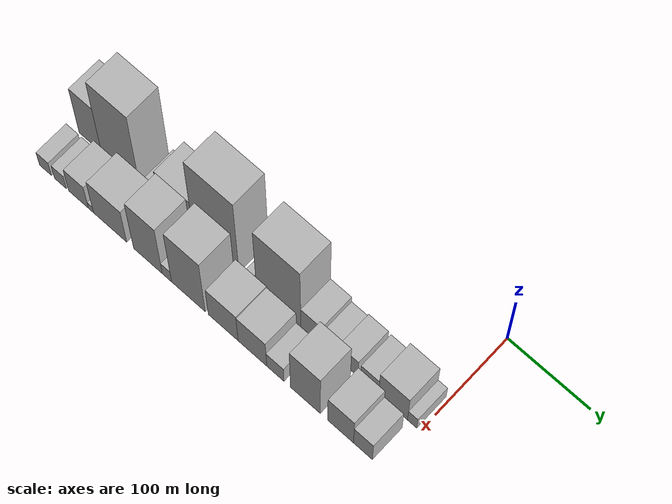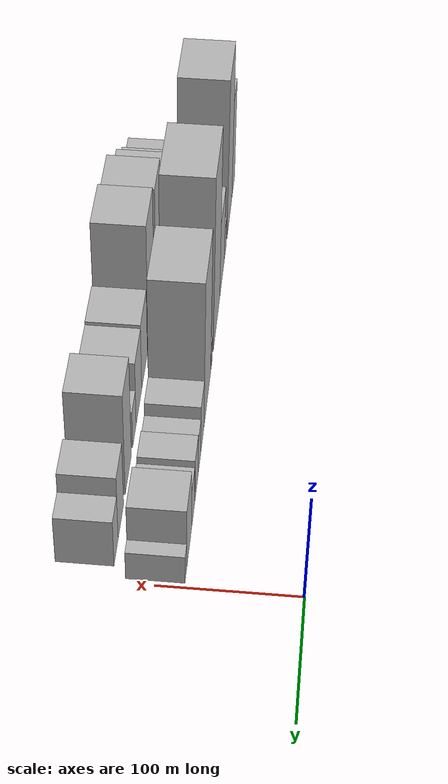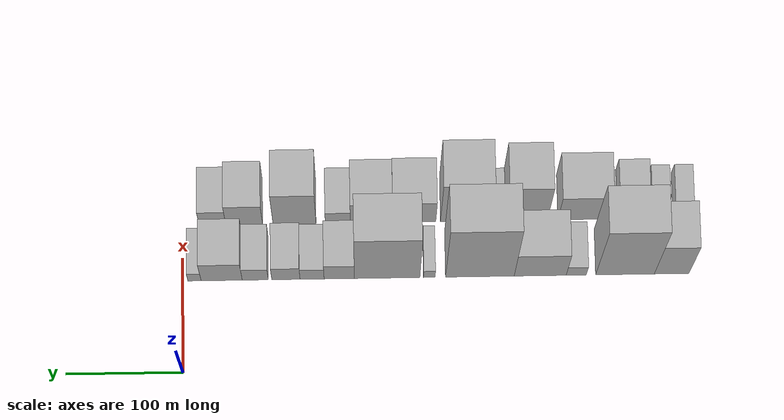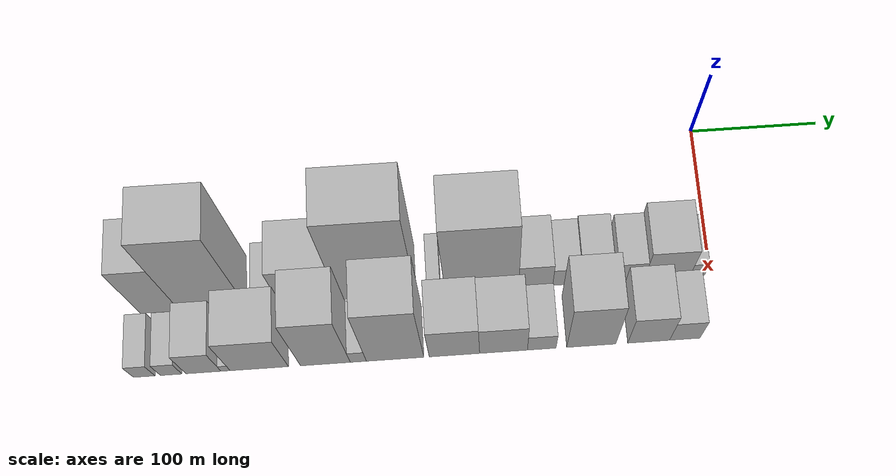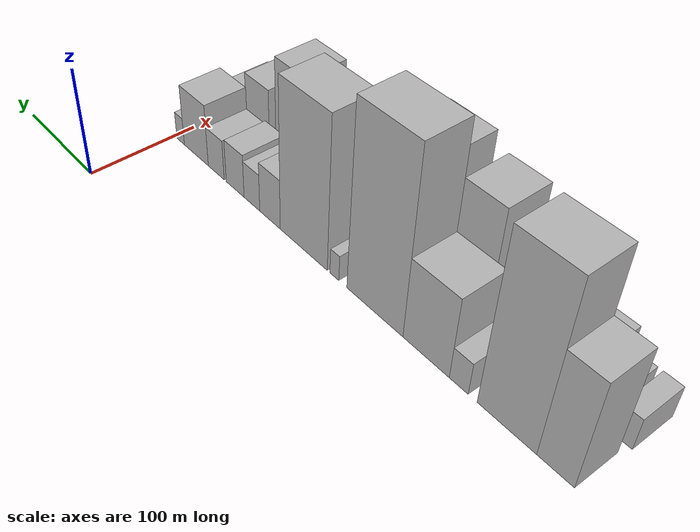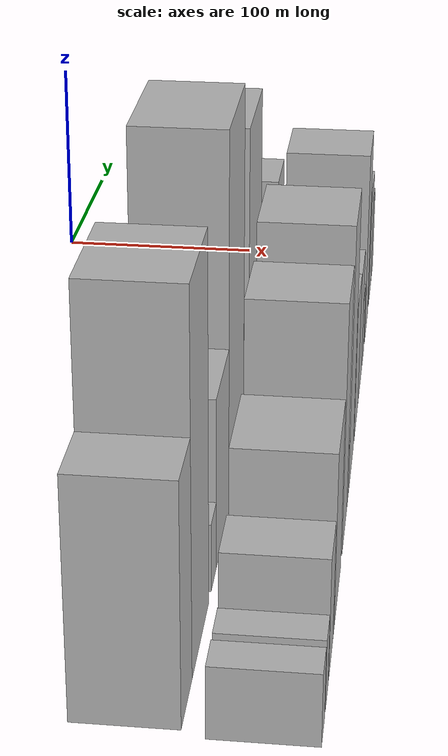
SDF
<sdf version="1.6">
 <world name="default">
  <model name="building_1">
   <static>1</static>
   <pose>100.0000 -419.1449 0 0.000000 0.000000 0.000000</pose>
   <link name="link">
    <pose>0 0 49.50 0 0 0</pose>
    <collision name="collision"><geometry><box><size>40.0000 29.7102 99.0000</size></box></geometry></collision>
    <visual name="visual">
     <cast_shadows>0</cast_shadows>
     <geometry><box><size>40.0000 29.7102 99.0000</size></box></geometry>
     <material>
      <script>
       <uri>model://HANNAS_wall/materials/scripts</uri>
       <uri>model://HANNAS_wall/materials/textures</uri>
       <name>vrc/HANNAS_wall</name>
      </script>
     </material>
    </visual>
   </link>
  </model>
  <model name="building_2">
   <static>1</static>
   <pose>100.0000 -379.1025 0 0.000000 0.000000 0.000000</pose>
   <link name="link">
    <pose>0 0 78.00 0 0 0</pose>
    <collision name="collision"><geometry><box><size>40.0000 50.3746 156.0000</size></box></geometry></collision>
    <visual name="visual">
     <cast_shadows>0</cast_shadows>
     <geometry><box><size>40.0000 50.3746 156.0000</size></box></geometry>
     <material>
      <script>
       <uri>model://HANNAS_wall/materials/scripts</uri>
       <uri>model://HANNAS_wall/materials/textures</uri>
       <name>vrc/HANNAS_wall</name>
      </script>
     </material>
    </visual>
   </link>
  </model>
  <model name="building_3">
   <static>1</static>
   <pose>100.0000 -337.2954 0 0.000000 0.000000 0.000000</pose>
   <link name="link">
    <pose>0 0 15.00 0 0 0</pose>
    <collision name="collision"><geometry><box><size>40.0000 17.2396 30.0000</size></box></geometry></collision>
    <visual name="visual">
     <cast_shadows>0</cast_shadows>
     <geometry><box><size>40.0000 17.2396 30.0000</size></box></geometry>
     <material>
      <script>
       <uri>model://HANNAS_wall/materials/scripts</uri>
       <uri>model://HANNAS_wall/materials/textures</uri>
       <name>vrc/HANNAS_wall</name>
      </script>
     </material>
    </visual>
   </link>
  </model>
  <model name="building_4">
   <static>1</static>
   <pose>100.0000 -306.3645 0 0.000000 0.000000 0.000000</pose>
   <link name="link">
    <pose>0 0 37.50 0 0 0</pose>
    <collision name="collision"><geometry><box><size>40.0000 44.6222 75.0000</size></box></geometry></collision>
    <visual name="visual">
     <cast_shadows>0</cast_shadows>
     <geometry><box><size>40.0000 44.6222 75.0000</size></box></geometry>
     <material>
      <script>
       <uri>model://HANNAS_wall/materials/scripts</uri>
       <uri>model://HANNAS_wall/materials/textures</uri>
       <name>vrc/HANNAS_wall</name>
      </script>
     </material>
    </visual>
   </link>
  </model>
  <model name="building_5">
   <static>1</static>
   <pose>100.0000 -254.5861 0 0.000000 0.000000 0.000000</pose>
   <link name="link">
    <pose>0 0 84.00 0 0 0</pose>
    <collision name="collision"><geometry><box><size>40.0000 58.9345 168.0000</size></box></geometry></collision>
    <visual name="visual">
     <cast_shadows>0</cast_shadows>
     <geometry><box><size>40.0000 58.9345 168.0000</size></box></geometry>
     <material>
      <script>
       <uri>model://HANNAS_wall/materials/scripts</uri>
       <uri>model://HANNAS_wall/materials/textures</uri>
       <name>vrc/HANNAS_wall</name>
      </script>
     </material>
    </visual>
   </link>
  </model>
  <model name="building_6">
   <static>1</static>
   <pose>100.0000 -211.1218 0 0.000000 0.000000 0.000000</pose>
   <link name="link">
    <pose>0 0 12.00 0 0 0</pose>
    <collision name="collision"><geometry><box><size>40.0000 9.9941 24.0000</size></box></geometry></collision>
    <visual name="visual">
     <cast_shadows>0</cast_shadows>
     <geometry><box><size>40.0000 9.9941 24.0000</size></box></geometry>
     <material>
      <script>
       <uri>model://HANNAS_wall/materials/scripts</uri>
       <uri>model://HANNAS_wall/materials/textures</uri>
       <name>vrc/HANNAS_wall</name>
      </script>
     </material>
    </visual>
   </link>
  </model>
  <model name="building_7">
   <static>1</static>
   <pose>100.0000 -175.0322 0 0.000000 0.000000 0.000000</pose>
   <link name="link">
    <pose>0 0 70.50 0 0 0</pose>
    <collision name="collision"><geometry><box><size>40.0000 56.1850 141.0000</size></box></geometry></collision>
    <visual name="visual">
     <cast_shadows>0</cast_shadows>
     <geometry><box><size>40.0000 56.1850 141.0000</size></box></geometry>
     <material>
      <script>
       <uri>model://HANNAS_wall/materials/scripts</uri>
       <uri>model://HANNAS_wall/materials/textures</uri>
       <name>vrc/HANNAS_wall</name>
      </script>
     </material>
    </visual>
   </link>
  </model>
  <model name="building_8">
   <static>1</static>
   <pose>100.0000 -133.9525 0 0.000000 0.000000 0.000000</pose>
   <link name="link">
    <pose>0 0 24.00 0 0 0</pose>
    <collision name="collision"><geometry><box><size>40.0000 25.9746 48.0000</size></box></geometry></collision>
    <visual name="visual">
     <cast_shadows>0</cast_shadows>
     <geometry><box><size>40.0000 25.9746 48.0000</size></box></geometry>
     <material>
      <script>
       <uri>model://HANNAS_wall/materials/scripts</uri>
       <uri>model://HANNAS_wall/materials/textures</uri>
       <name>vrc/HANNAS_wall</name>
      </script>
     </material>
    </visual>
   </link>
  </model>
  <model name="building_9">
   <static>1</static>
   <pose>100.0000 -110.6520 0 0.000000 0.000000 0.000000</pose>
   <link name="link">
    <pose>0 0 18.00 0 0 0</pose>
    <collision name="collision"><geometry><box><size>40.0000 20.6263 36.0000</size></box></geometry></collision>
    <visual name="visual">
     <cast_shadows>0</cast_shadows>
     <geometry><box><size>40.0000 20.6263 36.0000</size></box></geometry>
     <material>
      <script>
       <uri>model://HANNAS_wall/materials/scripts</uri>
       <uri>model://HANNAS_wall/materials/textures</uri>
       <name>vrc/HANNAS_wall</name>
      </script>
     </material>
    </visual>
   </link>
  </model>
  <model name="building_10">
   <static>1</static>
   <pose>100.0000 -88.2212 0 0.000000 0.000000 0.000000</pose>
   <link name="link">
    <pose>0 0 21.00 0 0 0</pose>
    <collision name="collision"><geometry><box><size>40.0000 24.2351 42.0000</size></box></geometry></collision>
    <visual name="visual">
     <cast_shadows>0</cast_shadows>
     <geometry><box><size>40.0000 24.2351 42.0000</size></box></geometry>
     <material>
      <script>
       <uri>model://HANNAS_wall/materials/scripts</uri>
       <uri>model://HANNAS_wall/materials/textures</uri>
       <name>vrc/HANNAS_wall</name>
      </script>
     </material>
    </visual>
   </link>
  </model>
  <model name="building_11">
   <static>1</static>
   <pose>100.0000 -61.9417 0 0.000000 0.000000 0.000000</pose>
   <link name="link">
    <pose>0 0 19.50 0 0 0</pose>
    <collision name="collision"><geometry><box><size>40.0000 22.3239 39.0000</size></box></geometry></collision>
    <visual name="visual">
     <cast_shadows>0</cast_shadows>
     <geometry><box><size>40.0000 22.3239 39.0000</size></box></geometry>
     <material>
      <script>
       <uri>model://HANNAS_wall/materials/scripts</uri>
       <uri>model://HANNAS_wall/materials/textures</uri>
       <name>vrc/HANNAS_wall</name>
      </script>
     </material>
    </visual>
   </link>
  </model>
  <model name="building_12">
   <static>1</static>
   <pose>100.0000 -33.1645 0 0.000000 0.000000 0.000000</pose>
   <link name="link">
    <pose>0 0 30.00 0 0 0</pose>
    <collision name="collision"><geometry><box><size>40.0000 35.2304 60.0000</size></box></geometry></collision>
    <visual name="visual">
     <cast_shadows>0</cast_shadows>
     <geometry><box><size>40.0000 35.2304 60.0000</size></box></geometry>
     <material>
      <script>
       <uri>model://HANNAS_wall/materials/scripts</uri>
       <uri>model://HANNAS_wall/materials/textures</uri>
       <name>vrc/HANNAS_wall</name>
      </script>
     </material>
    </visual>
   </link>
  </model>
  <model name="building_13">
   <static>1</static>
   <pose>100.0000 -9.8632 0 0.000000 0.000000 0.000000</pose>
   <link name="link">
    <pose>0 0 13.50 0 0 0</pose>
    <collision name="collision"><geometry><box><size>40.0000 11.3722 27.0000</size></box></geometry></collision>
    <visual name="visual">
     <cast_shadows>0</cast_shadows>
     <geometry><box><size>40.0000 11.3722 27.0000</size></box></geometry>
     <material>
      <script>
       <uri>model://HANNAS_wall/materials/scripts</uri>
       <uri>model://HANNAS_wall/materials/textures</uri>
       <name>vrc/HANNAS_wall</name>
      </script>
     </material>
    </visual>
   </link>
  </model>
  <model name="building_27">
   <static>1</static>
   <pose>149.0000 -430.0096 0 0.000000 0.000000 0.000000</pose>
   <link name="link">
    <pose>0 0 15.00 0 0 0</pose>
    <collision name="collision"><geometry><box><size>40.0000 15.9809 30.0000</size></box></geometry></collision>
    <visual name="visual">
     <cast_shadows>0</cast_shadows>
     <geometry><box><size>40.0000 15.9809 30.0000</size></box></geometry>
     <material>
      <script>
       <uri>model://HANNAS_wall/materials/scripts</uri>
       <uri>model://HANNAS_wall/materials/textures</uri>
       <name>vrc/HANNAS_wall</name>
      </script>
     </material>
    </visual>
   </link>
  </model>
  <model name="building_28">
   <static>1</static>
   <pose>149.0000 -410.0666 0 0.000000 0.000000 0.000000</pose>
   <link name="link">
    <pose>0 0 15.00 0 0 0</pose>
    <collision name="collision"><geometry><box><size>40.0000 15.9052 30.0000</size></box></geometry></collision>
    <visual name="visual">
     <cast_shadows>0</cast_shadows>
     <geometry><box><size>40.0000 15.9052 30.0000</size></box></geometry>
     <material>
      <script>
       <uri>model://HANNAS_wall/materials/scripts</uri>
       <uri>model://HANNAS_wall/materials/textures</uri>
       <name>vrc/HANNAS_wall</name>
      </script>
     </material>
    </visual>
   </link>
  </model>
  <model name="building_29">
   <static>1</static>
   <pose>149.0000 -386.0494 0 0.000000 0.000000 0.000000</pose>
   <link name="link">
    <pose>0 0 25.50 0 0 0</pose>
    <collision name="collision"><geometry><box><size>40.0000 26.1292 51.0000</size></box></geometry></collision>
    <visual name="visual">
     <cast_shadows>0</cast_shadows>
     <geometry><box><size>40.0000 26.1292 51.0000</size></box></geometry>
     <material>
      <script>
       <uri>model://HANNAS_wall/materials/scripts</uri>
       <uri>model://HANNAS_wall/materials/textures</uri>
       <name>vrc/HANNAS_wall</name>
      </script>
     </material>
    </visual>
   </link>
  </model>
  <model name="building_30">
   <static>1</static>
   <pose>149.0000 -369.6076 0 0.000000 0.000000 0.000000</pose>
   <link name="link">
    <pose>0 0 7.50 0 0 0</pose>
    <collision name="collision"><geometry><box><size>40.0000 6.7543 15.0000</size></box></geometry></collision>
    <visual name="visual">
     <cast_shadows>0</cast_shadows>
     <geometry><box><size>40.0000 6.7543 15.0000</size></box></geometry>
     <material>
      <script>
       <uri>model://HANNAS_wall/materials/scripts</uri>
       <uri>model://HANNAS_wall/materials/textures</uri>
       <name>vrc/HANNAS_wall</name>
      </script>
     </material>
    </visual>
   </link>
  </model>
  <model name="building_31">
   <static>1</static>
   <pose>149.0000 -344.5465 0 0.000000 0.000000 0.000000</pose>
   <link name="link">
    <pose>0 0 37.50 0 0 0</pose>
    <collision name="collision"><geometry><box><size>40.0000 43.3679 75.0000</size></box></geometry></collision>
    <visual name="visual">
     <cast_shadows>0</cast_shadows>
     <geometry><box><size>40.0000 43.3679 75.0000</size></box></geometry>
     <material>
      <script>
       <uri>model://HANNAS_wall/materials/scripts</uri>
       <uri>model://HANNAS_wall/materials/textures</uri>
       <name>vrc/HANNAS_wall</name>
      </script>
     </material>
    </visual>
   </link>
  </model>
  <model name="building_32">
   <static>1</static>
   <pose>149.0000 -295.2704 0 0.000000 0.000000 0.000000</pose>
   <link name="link">
    <pose>0 0 55.50 0 0 0</pose>
    <collision name="collision"><geometry><box><size>40.0000 37.1843 111.0000</size></box></geometry></collision>
    <visual name="visual">
     <cast_shadows>0</cast_shadows>
     <geometry><box><size>40.0000 37.1843 111.0000</size></box></geometry>
     <material>
      <script>
       <uri>model://HANNAS_wall/materials/scripts</uri>
       <uri>model://HANNAS_wall/materials/textures</uri>
       <name>vrc/HANNAS_wall</name>
      </script>
     </material>
    </visual>
   </link>
  </model>
  <model name="building_33">
   <static>1</static>
   <pose>149.0000 -270.7021 0 0.000000 0.000000 0.000000</pose>
   <link name="link">
    <pose>0 0 13.50 0 0 0</pose>
    <collision name="collision"><geometry><box><size>40.0000 11.9523 27.0000</size></box></geometry></collision>
    <visual name="visual">
     <cast_shadows>0</cast_shadows>
     <geometry><box><size>40.0000 11.9523 27.0000</size></box></geometry>
     <material>
      <script>
       <uri>model://HANNAS_wall/materials/scripts</uri>
       <uri>model://HANNAS_wall/materials/textures</uri>
       <name>vrc/HANNAS_wall</name>
      </script>
     </material>
    </visual>
   </link>
  </model>
  <model name="building_34">
   <static>1</static>
   <pose>149.0000 -243.2420 0 0.000000 0.000000 0.000000</pose>
   <link name="link">
    <pose>0 0 61.50 0 0 0</pose>
    <collision name="collision"><geometry><box><size>40.0000 42.9679 123.0000</size></box></geometry></collision>
    <visual name="visual">
     <cast_shadows>0</cast_shadows>
     <geometry><box><size>40.0000 42.9679 123.0000</size></box></geometry>
     <material>
      <script>
       <uri>model://HANNAS_wall/materials/scripts</uri>
       <uri>model://HANNAS_wall/materials/textures</uri>
       <name>vrc/HANNAS_wall</name>
      </script>
     </material>
    </visual>
   </link>
  </model>
  <model name="building_35">
   <static>1</static>
   <pose>149.0000 -198.8711 0 0.000000 0.000000 0.000000</pose>
   <link name="link">
    <pose>0 0 33.00 0 0 0</pose>
    <collision name="collision"><geometry><box><size>40.0000 37.7739 66.0000</size></box></geometry></collision>
    <visual name="visual">
     <cast_shadows>0</cast_shadows>
     <geometry><box><size>40.0000 37.7739 66.0000</size></box></geometry>
     <material>
      <script>
       <uri>model://HANNAS_wall/materials/scripts</uri>
       <uri>model://HANNAS_wall/materials/textures</uri>
       <name>vrc/HANNAS_wall</name>
      </script>
     </material>
    </visual>
   </link>
  </model>
  <model name="building_36">
   <static>1</static>
   <pose>149.0000 -162.0549 0 0.000000 0.000000 0.000000</pose>
   <link name="link">
    <pose>0 0 31.50 0 0 0</pose>
    <collision name="collision"><geometry><box><size>40.0000 35.8585 63.0000</size></box></geometry></collision>
    <visual name="visual">
     <cast_shadows>0</cast_shadows>
     <geometry><box><size>40.0000 35.8585 63.0000</size></box></geometry>
     <material>
      <script>
       <uri>model://HANNAS_wall/materials/scripts</uri>
       <uri>model://HANNAS_wall/materials/textures</uri>
       <name>vrc/HANNAS_wall</name>
      </script>
     </material>
    </visual>
   </link>
  </model>
  <model name="building_37">
   <static>1</static>
   <pose>149.0000 -133.3609 0 0.000000 0.000000 0.000000</pose>
   <link name="link">
    <pose>0 0 18.00 0 0 0</pose>
    <collision name="collision"><geometry><box><size>40.0000 21.5295 36.0000</size></box></geometry></collision>
    <visual name="visual">
     <cast_shadows>0</cast_shadows>
     <geometry><box><size>40.0000 21.5295 36.0000</size></box></geometry>
     <material>
      <script>
       <uri>model://HANNAS_wall/materials/scripts</uri>
       <uri>model://HANNAS_wall/materials/textures</uri>
       <name>vrc/HANNAS_wall</name>
      </script>
     </material>
    </visual>
   </link>
  </model>
  <model name="building_38">
   <static>1</static>
   <pose>149.0000 -96.1012 0 0.000000 0.000000 0.000000</pose>
   <link name="link">
    <pose>0 0 49.50 0 0 0</pose>
    <collision name="collision"><geometry><box><size>40.0000 36.9900 99.0000</size></box></geometry></collision>
    <visual name="visual">
     <cast_shadows>0</cast_shadows>
     <geometry><box><size>40.0000 36.9900 99.0000</size></box></geometry>
     <material>
      <script>
       <uri>model://HANNAS_wall/materials/scripts</uri>
       <uri>model://HANNAS_wall/materials/textures</uri>
       <name>vrc/HANNAS_wall</name>
      </script>
     </material>
    </visual>
   </link>
  </model>
  <model name="building_39">
   <static>1</static>
   <pose>149.0000 -52.7974 0 0.000000 0.000000 0.000000</pose>
   <link name="link">
    <pose>0 0 31.50 0 0 0</pose>
    <collision name="collision"><geometry><box><size>40.0000 31.6176 63.0000</size></box></geometry></collision>
    <visual name="visual">
     <cast_shadows>0</cast_shadows>
     <geometry><box><size>40.0000 31.6176 63.0000</size></box></geometry>
     <material>
      <script>
       <uri>model://HANNAS_wall/materials/scripts</uri>
       <uri>model://HANNAS_wall/materials/textures</uri>
       <name>vrc/HANNAS_wall</name>
      </script>
     </material>
    </visual>
   </link>
  </model>
  <model name="building_40">
   <static>1</static>
   <pose>149.0000 -25.4999 0 0.000000 0.000000 0.000000</pose>
   <link name="link">
    <pose>0 0 22.50 0 0 0</pose>
    <collision name="collision"><geometry><box><size>40.0000 22.9774 45.0000</size></box></geometry></collision>
    <visual name="visual">
     <cast_shadows>0</cast_shadows>
     <geometry><box><size>40.0000 22.9774 45.0000</size></box></geometry>
     <material>
      <script>
       <uri>model://HANNAS_wall/materials/scripts</uri>
       <uri>model://HANNAS_wall/materials/textures</uri>
       <name>vrc/HANNAS_wall</name>
      </script>
     </material>
    </visual>
   </link>
  </model>
 </world>
</sdf>
